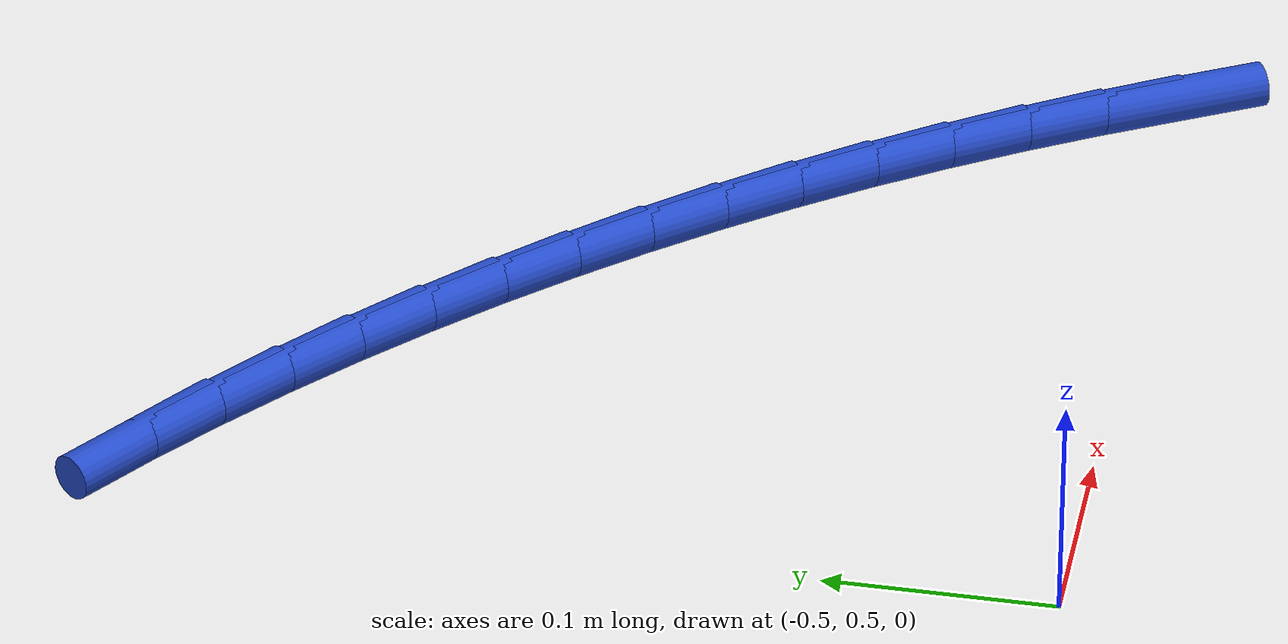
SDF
<sdf version="1.6">
 <world name="default">
  <model name="ground_plane">
   <static>1</static>
   <link name="link">
    <collision name="collision">
     <geometry><plane><normal>0 0 1</normal><size>100 100</size></plane></geometry>
     <surface><friction><ode><mu>100</mu><mu2>50</mu2></ode></friction></surface>
    </collision>
    <visual name="visual">
     <cast_shadows>0</cast_shadows>
     <geometry><plane><normal>0 0 1</normal><size>100 100</size></plane></geometry>
     <material>
      <script><uri>file://media/materials/scripts/gazebo.material</uri><name>Gazebo/WhiteGlow</name></script>
     </material>
    </visual>
   </link>
  </model>
  <model name="line">
   <link name="link_14">
    <pose>-0.12909636862612736 0.5003236095513213 0.01 0 1.57 -1.0712521805309185</pose>
    <collision name="collision">
     <geometry><cylinder><radius>0.01</radius><length>0.08</length></cylinder></geometry>
    </collision>
    <visual name="visual">
     <material>
      <script><name>Gazebo/Blue</name><uri>file://media/materials/scripts/gazebo.material</uri></script>
     </material>
     <geometry><cylinder><radius>0.01</radius><length>0.08</length></cylinder></geometry>
    </visual>
   </link>
   <link name="link_15">
    <pose>-0.14699759915160396 0.5331271249674784 0.01 0 1.57 -1.0396283739457042</pose>
    <collision name="collision">
     <geometry><cylinder><radius>0.01</radius><length>0.08</length></cylinder></geometry>
    </collision>
    <visual name="visual">
     <material>
      <script><name>Gazebo/Blue</name><uri>file://media/materials/scripts/gazebo.material</uri></script>
     </material>
     <geometry><cylinder><radius>0.01</radius><length>0.08</length></cylinder></geometry>
    </visual>
   </link>
   <link name="link_16">
    <pose>-0.16593338075419867 0.5653589559527432 0.01 0 1.57 -1.0080533781159469</pose>
    <collision name="collision">
     <geometry><cylinder><radius>0.01</radius><length>0.08</length></cylinder></geometry>
    </collision>
    <visual name="visual">
     <material>
      <script><name>Gazebo/Blue</name><uri>file://media/materials/scripts/gazebo.material</uri></script>
     </material>
     <geometry><cylinder><radius>0.01</radius><length>0.08</length></cylinder></geometry>
    </visual>
   </link>
   <link name="link_17">
    <pose>-0.18588397867485068 0.5969875513066321 0.01 0 1.57 -0.9764958613945641</pose>
    <collision name="collision">
     <geometry><cylinder><radius>0.01</radius><length>0.08</length></cylinder></geometry>
    </collision>
    <visual name="visual">
     <material>
      <script><name>Gazebo/Blue</name><uri>file://media/materials/scripts/gazebo.material</uri></script>
     </material>
     <geometry><cylinder><radius>0.01</radius><length>0.08</length></cylinder></geometry>
    </visual>
   </link>
   <link name="link_18">
    <pose>-0.20682965815449908 0.6279813598286613 0.01 0 1.57 -0.9449245142598489</pose>
    <collision name="collision">
     <geometry><cylinder><radius>0.01</radius><length>0.08</length></cylinder></geometry>
    </collision>
    <visual name="visual">
     <material>
      <script><name>Gazebo/Blue</name><uri>file://media/materials/scripts/gazebo.material</uri></script>
     </material>
     <geometry><cylinder><radius>0.01</radius><length>0.08</length></cylinder></geometry>
    </visual>
   </link>
   <link name="link_19">
    <pose>-0.22875068443408303 0.6583088303183473 0.01 0 1.57 -0.9133082374298498</pose>
    <collision name="collision">
     <geometry><cylinder><radius>0.01</radius><length>0.08</length></cylinder></geometry>
    </collision>
    <visual name="visual">
     <material>
      <script><name>Gazebo/Blue</name><uri>file://media/materials/scripts/gazebo.material</uri></script>
     </material>
     <geometry><cylinder><radius>0.01</radius><length>0.08</length></cylinder></geometry>
    </visual>
   </link>
   <link name="link_20">
    <pose>-0.2516273227545417 0.6879384115752066 0.01 0 1.57 -0.8816163311751766</pose>
    <collision name="collision">
     <geometry><cylinder><radius>0.01</radius><length>0.08</length></cylinder></geometry>
    </collision>
    <visual name="visual">
     <material>
      <script><name>Gazebo/Blue</name><uri>file://media/materials/scripts/gazebo.material</uri></script>
     </material>
     <geometry><cylinder><radius>0.01</radius><length>0.08</length></cylinder></geometry>
    </visual>
   </link>
   <link name="link_21">
    <pose>-0.27543983835681407 0.7168385523987553 0.01 0 1.57 -0.8498186885022461</pose>
    <collision name="collision">
     <geometry><cylinder><radius>0.01</radius><length>0.08</length></cylinder></geometry>
    </collision>
    <visual name="visual">
     <material>
      <script><name>Gazebo/Blue</name><uri>file://media/materials/scripts/gazebo.material</uri></script>
     </material>
     <geometry><cylinder><radius>0.01</radius><length>0.08</length></cylinder></geometry>
    </visual>
   </link>
   <link name="link_22">
    <pose>-0.3001684964818394 0.7449777015885098 0.01 0 1.57 -0.8178859947104978</pose>
    <collision name="collision">
     <geometry><cylinder><radius>0.01</radius><length>0.08</length></cylinder></geometry>
    </collision>
    <visual name="visual">
     <material>
      <script><name>Gazebo/Blue</name><uri>file://media/materials/scripts/gazebo.material</uri></script>
     </material>
     <geometry><cylinder><radius>0.01</radius><length>0.08</length></cylinder></geometry>
    </visual>
   </link>
   <link name="link_23">
    <pose>-0.32579356237055673 0.7723243079439869 0.01 0 1.57 -0.7857899355739253</pose>
    <collision name="collision">
     <geometry><cylinder><radius>0.01</radius><length>0.08</length></cylinder></geometry>
    </collision>
    <visual name="visual">
     <material>
      <script><name>Gazebo/Blue</name><uri>file://media/materials/scripts/gazebo.material</uri></script>
     </material>
     <geometry><cylinder><radius>0.01</radius><length>0.08</length></cylinder></geometry>
    </visual>
   </link>
   <link name="link_24">
    <pose>-0.35229530126390507 0.7988468202647022 0.01 0 1.57 -0.7534852242860435</pose>
    <collision name="collision">
     <geometry><cylinder><radius>0.01</radius><length>0.08</length></cylinder></geometry>
    </collision>
    <visual name="visual">
     <material>
      <script><name>Gazebo/Blue</name><uri>file://media/materials/scripts/gazebo.material</uri></script>
     </material>
     <geometry><cylinder><radius>0.01</radius><length>0.08</length></cylinder></geometry>
    </visual>
   </link>
   <link name="link_25">
    <pose>-0.379653244259535 0.8245120628915645 0.01 0 1.57 -0.7206457512692492</pose>
    <collision name="collision">
     <geometry><cylinder><radius>0.01</radius><length>0.08</length></cylinder></geometry>
    </collision>
    <visual name="visual">
     <material>
      <script><name>Gazebo/Blue</name><uri>file://media/materials/scripts/gazebo.material</uri></script>
     </material>
     <geometry><cylinder><radius>0.01</radius><length>0.08</length></cylinder></geometry>
    </visual>
   </link>
   <link name="link_26">
    <pose>-0.4078358339566967 0.8492623243467254 0.01 0 1.57 -0.6869321946132785</pose>
    <collision name="collision">
     <geometry><cylinder><radius>0.01</radius><length>0.08</length></cylinder></geometry>
    </collision>
    <visual name="visual">
     <material>
      <script><name>Gazebo/Blue</name><uri>file://media/materials/scripts/gazebo.material</uri></script>
     </material>
     <geometry><cylinder><radius>0.01</radius><length>0.08</length></cylinder></geometry>
    </visual>
   </link>
   <link name="link_27">
    <pose>-0.43680292373964574 0.8730208875652158 0.01 0 1.57 -0.6521944734723227</pose>
    <collision name="collision">
     <geometry><cylinder><radius>0.01</radius><length>0.08</length></cylinder></geometry>
    </collision>
    <visual name="visual">
     <material>
      <script><name>Gazebo/Blue</name><uri>file://media/materials/scripts/gazebo.material</uri></script>
     </material>
     <geometry><cylinder><radius>0.01</radius><length>0.08</length></cylinder></geometry>
    </visual>
   </link>
   <link name="link_28">
    <pose>-0.46651414294938937 0.8957105397355428 0.01 0 1.57 -0.616287864081767</pose>
    <collision name="collision">
     <geometry><cylinder><radius>0.01</radius><length>0.08</length></cylinder></geometry>
    </collision>
    <visual name="visual">
     <material>
      <script><name>Gazebo/Blue</name><uri>file://media/materials/scripts/gazebo.material</uri></script>
     </material>
     <geometry><cylinder><radius>0.01</radius><length>0.08</length></cylinder></geometry>
    </visual>
   </link>
  </model>
 </world>
</sdf>
